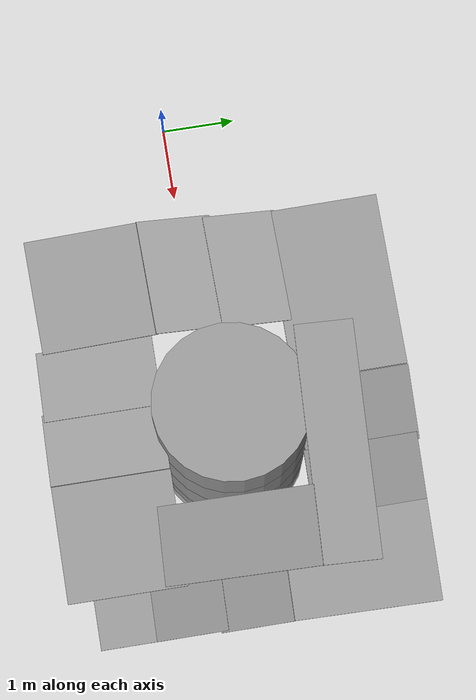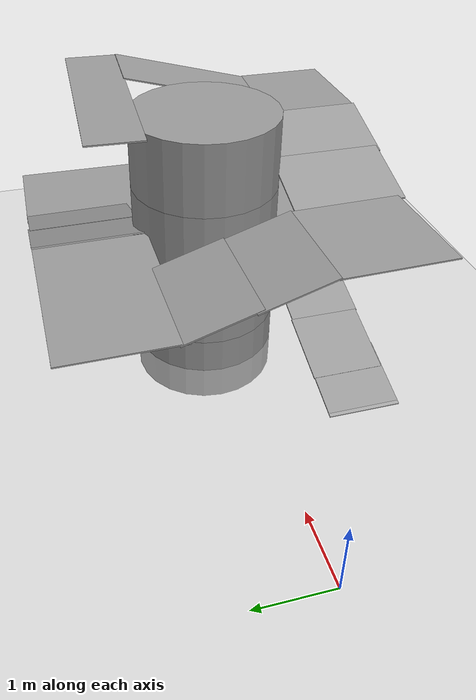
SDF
<sdf version="1.6">
 <world name="default">
  <light name="sun" type="directional">
   <pose>0 0 10 0 -0 0</pose>
   <diffuse>0.8 0.8 0.8 1</diffuse>
   <specular>0.2 0.2 0.2 1</specular>
   <attenuation>
    <range>1000</range>
    <constant>0.9</constant>
    <linear>0.01</linear>
    <quadratic>0.001</quadratic>
   </attenuation>
   <direction>-0.5 0.1 -0.9</direction>
  </light>
  <model name="ground_plane">
   <static>1</static>
   <link name="link">
    <collision name="collision">
     <geometry><plane><normal>0 0 1</normal><size>100 100</size></plane></geometry>
     <surface>
      <contact><collide_bitmask>65535</collide_bitmask></contact>
      <friction><ode><mu>100</mu><mu2>50</mu2></ode></friction>
     </surface>
    </collision>
    <visual name="visual">
     <cast_shadows>0</cast_shadows>
     <geometry><plane><normal>0 0 1</normal><size>100 100</size></plane></geometry>
     <material>
      <script><uri>file://media/materials/scripts/gazebo.material</uri><name>Gazebo/Grey</name></script>
     </material>
    </visual>
   </link>
  </model>
  <gravity>0 0 -9.8</gravity>
  <magnetic_field>6e-06 2.3e-05 -4.2e-05</magnetic_field>
  <atmosphere type="adiabatic"/>
  <physics name="default_physics" default="0" type="ode">
   <max_step_size>0.001</max_step_size>
   <real_time_factor>1</real_time_factor>
   <real_time_update_rate>1000</real_time_update_rate>
  </physics>
  <scene><ambient>0.4 0.4 0.4 1</ambient><background>0.7 0.7 0.7 1</background><shadows>1</shadows></scene>
  <spherical_coordinates>
   <surface_model>EARTH_WGS84</surface_model>
   <latitude_deg>0</latitude_deg>
   <longitude_deg>0</longitude_deg>
   <elevation>0</elevation>
   <heading_deg>0</heading_deg>
  </spherical_coordinates>
  <model name="tall_cylinder">
   <link name="link">
    <inertial>
     <mass>1</mass>
     <inertia><ixx>0.145833</ixx><ixy>0</ixy><ixz>0</ixz><iyy>0.145833</iyy><iyz>0</iyz><izz>0.125</izz></inertia>
    </inertial>
    <visual name="visual">
     <geometry><cylinder><radius>1</radius><length>1</length></cylinder></geometry>
     <material>
      <script><name>Gazebo/Grey</name><uri>file://media/materials/scripts/gazebo.material</uri></script>
      <shader type="pixel"><normal_map>__default__</normal_map></shader>
      <emissive>0 0 0 1</emissive>
      <ambient>0.3 0.3 0.3 1</ambient>
      <diffuse>0.7 0.7 0.7 1</diffuse>
      <specular>0.01 0.01 0.01 1</specular>
     </material>
    </visual>
    <collision name="collision">
     <geometry><cylinder><radius>0.5</radius><length>1</length></cylinder></geometry>
     <surface>
      <friction>
       <ode><mu>1</mu><mu2>1</mu2><fdir1>0 0 0</fdir1><slip1>0</slip1><slip2>0</slip2></ode>
       <torsional>
        <coefficient>1</coefficient>
        <patch_radius>0</patch_radius>
        <surface_radius>0</surface_radius>
        <use_patch_radius>1</use_patch_radius>
        <ode><slip>0</slip></ode>
       </torsional>
      </friction>
      <bounce><restitution_coefficient>0</restitution_coefficient><threshold>1e+06</threshold></bounce>
      <contact>
       <collide_without_contact>0</collide_without_contact>
       <collide_without_contact_bitmask>1</collide_without_contact_bitmask>
       <collide_bitmask>1</collide_bitmask>
       <ode>
        <soft_cfm>0</soft_cfm>
        <soft_erp>0.2</soft_erp>
        <kp>1e+13</kp>
        <kd>1</kd>
        <max_vel>0.01</max_vel>
        <min_depth>0</min_depth>
       </ode>
       <bullet>
        <split_impulse>1</split_impulse>
        <split_impulse_penetration_threshold>-0.01</split_impulse_penetration_threshold>
        <soft_cfm>0</soft_cfm>
        <soft_erp>0.2</soft_erp>
        <kp>1e+13</kp>
        <kd>1</kd>
       </bullet>
      </contact>
     </surface>
    </collision>
   </link>
   <link name="link_0">
    <inertial>
     <mass>10</mass>
     <inertia><ixx>1.45833</ixx><ixy>0</ixy><ixz>0</ixz><iyy>1.45833</iyy><iyz>0</iyz><izz>1.25</izz></inertia>
    </inertial>
    <pose>0 0 1 -3e-06 -4e-06 -0</pose>
    <visual name="visual">
     <geometry><cylinder><radius>1</radius><length>1</length></cylinder></geometry>
     <material>
      <lighting>1</lighting>
      <script><uri>file://media/materials/scripts/gazebo.material</uri><name>Gazebo/Grey</name></script>
      <shader type="pixel"><normal_map>__default__</normal_map></shader>
      <emissive>0 0 0 1</emissive>
      <ambient>0.3 0.3 0.3 1</ambient>
      <diffuse>0.7 0.7 0.7 1</diffuse>
      <specular>0.01 0.01 0.01 1</specular>
     </material>
    </visual>
    <collision name="collision">
     <geometry><cylinder><radius>0.5</radius><length>1</length></cylinder></geometry>
     <surface>
      <friction>
       <ode><mu>1</mu><mu2>1</mu2><fdir1>0 0 0</fdir1><slip1>0</slip1><slip2>0</slip2></ode>
       <torsional>
        <coefficient>1</coefficient>
        <patch_radius>0</patch_radius>
        <surface_radius>0</surface_radius>
        <use_patch_radius>1</use_patch_radius>
        <ode><slip>0</slip></ode>
       </torsional>
      </friction>
      <bounce><restitution_coefficient>0</restitution_coefficient><threshold>1e+06</threshold></bounce>
      <contact>
       <collide_without_contact>0</collide_without_contact>
       <collide_without_contact_bitmask>1</collide_without_contact_bitmask>
       <collide_bitmask>1</collide_bitmask>
       <ode>
        <soft_cfm>0</soft_cfm>
        <soft_erp>0.2</soft_erp>
        <kp>1e+13</kp>
        <kd>1</kd>
        <max_vel>0.01</max_vel>
        <min_depth>0</min_depth>
       </ode>
       <bullet>
        <split_impulse>1</split_impulse>
        <split_impulse_penetration_threshold>-0.01</split_impulse_penetration_threshold>
        <soft_cfm>0</soft_cfm>
        <soft_erp>0.2</soft_erp>
        <kp>1e+13</kp>
        <kd>1</kd>
       </bullet>
      </contact>
     </surface>
    </collision>
   </link>
   <link name="link_1">
    <inertial>
     <mass>1</mass>
     <inertia><ixx>0.145833</ixx><ixy>0</ixy><ixz>0</ixz><iyy>0.145833</iyy><iyz>0</iyz><izz>0.125</izz></inertia>
    </inertial>
    <pose>-4e-06 3e-06 2 -3e-06 -4e-06 -0</pose>
    <visual name="visual">
     <geometry><cylinder><radius>1</radius><length>1</length></cylinder></geometry>
     <material>
      <lighting>1</lighting>
      <script><uri>file://media/materials/scripts/gazebo.material</uri><name>Gazebo/Grey</name></script>
      <shader type="pixel"><normal_map>__default__</normal_map></shader>
      <emissive>0 0 0 1</emissive>
      <ambient>0.3 0.3 0.3 1</ambient>
      <diffuse>0.7 0.7 0.7 1</diffuse>
      <specular>0.01 0.01 0.01 1</specular>
     </material>
    </visual>
    <collision name="collision">
     <geometry><cylinder><radius>0.5</radius><length>1</length></cylinder></geometry>
     <surface>
      <friction>
       <ode><mu>1</mu><mu2>1</mu2><fdir1>0 0 0</fdir1><slip1>0</slip1><slip2>0</slip2></ode>
       <torsional>
        <coefficient>1</coefficient>
        <patch_radius>0</patch_radius>
        <surface_radius>0</surface_radius>
        <use_patch_radius>1</use_patch_radius>
        <ode><slip>0</slip></ode>
       </torsional>
      </friction>
      <bounce><restitution_coefficient>0</restitution_coefficient><threshold>1e+06</threshold></bounce>
      <contact>
       <collide_without_contact>0</collide_without_contact>
       <collide_without_contact_bitmask>1</collide_without_contact_bitmask>
       <collide_bitmask>1</collide_bitmask>
       <ode>
        <soft_cfm>0</soft_cfm>
        <soft_erp>0.2</soft_erp>
        <kp>1e+13</kp>
        <kd>1</kd>
        <max_vel>0.01</max_vel>
        <min_depth>0</min_depth>
       </ode>
       <bullet>
        <split_impulse>1</split_impulse>
        <split_impulse_penetration_threshold>-0.01</split_impulse_penetration_threshold>
        <soft_cfm>0</soft_cfm>
        <soft_erp>0.2</soft_erp>
        <kp>1e+13</kp>
        <kd>1</kd>
       </bullet>
      </contact>
     </surface>
    </collision>
   </link>
   <link name="link_2">
    <inertial>
     <mass>1</mass>
     <inertia><ixx>0.145833</ixx><ixy>0</ixy><ixz>0</ixz><iyy>0.145833</iyy><iyz>0</iyz><izz>0.125</izz></inertia>
    </inertial>
    <pose>-8e-06 6e-06 3 -3e-06 -4e-06 -0</pose>
    <visual name="visual">
     <geometry><cylinder><radius>1</radius><length>1</length></cylinder></geometry>
     <material>
      <lighting>1</lighting>
      <script><uri>file://media/materials/scripts/gazebo.material</uri><name>Gazebo/Grey</name></script>
      <shader type="pixel"><normal_map>__default__</normal_map></shader>
      <emissive>0 0 0 1</emissive>
      <ambient>0.3 0.3 0.3 1</ambient>
      <diffuse>0.7 0.7 0.7 1</diffuse>
      <specular>0.01 0.01 0.01 1</specular>
     </material>
    </visual>
    <collision name="collision">
     <geometry><cylinder><radius>0.5</radius><length>1</length></cylinder></geometry>
     <surface>
      <friction>
       <ode><mu>1</mu><mu2>1</mu2><fdir1>0 0 0</fdir1><slip1>0</slip1><slip2>0</slip2></ode>
       <torsional>
        <coefficient>1</coefficient>
        <patch_radius>0</patch_radius>
        <surface_radius>0</surface_radius>
        <use_patch_radius>1</use_patch_radius>
        <ode><slip>0</slip></ode>
       </torsional>
      </friction>
      <bounce><restitution_coefficient>0</restitution_coefficient><threshold>1e+06</threshold></bounce>
      <contact>
       <collide_without_contact>0</collide_without_contact>
       <collide_without_contact_bitmask>1</collide_without_contact_bitmask>
       <collide_bitmask>1</collide_bitmask>
       <ode>
        <soft_cfm>0</soft_cfm>
        <soft_erp>0.2</soft_erp>
        <kp>1e+13</kp>
        <kd>1</kd>
        <max_vel>0.01</max_vel>
        <min_depth>0</min_depth>
       </ode>
       <bullet>
        <split_impulse>1</split_impulse>
        <split_impulse_penetration_threshold>-0.01</split_impulse_penetration_threshold>
        <soft_cfm>0</soft_cfm>
        <soft_erp>0.2</soft_erp>
        <kp>1e+13</kp>
        <kd>1</kd>
       </bullet>
      </contact>
     </surface>
    </collision>
   </link>
   <joint name="link_0_JOINT_1" type="revolute">
    <parent>link_0</parent>
    <child>link_1</child>
    <axis>
     <xyz>1 0 0</xyz>
     <use_parent_model_frame>0</use_parent_model_frame>
     <limit>
      <lower>-1.79769e+308</lower>
      <upper>1.79769e+308</upper>
      <effort>-1</effort>
      <velocity>-1</velocity>
     </limit>
     <dynamics>
      <spring_reference>0</spring_reference>
      <spring_stiffness>0</spring_stiffness>
      <damping>0</damping>
      <friction>0</friction>
     </dynamics>
    </axis>
    <physics>
     <ode><limit><cfm>0</cfm><erp>0.2</erp></limit><suspension><cfm>0</cfm><erp>0.2</erp></suspension></ode>
    </physics>
   </joint>
   <joint name="link_1_JOINT_2" type="revolute">
    <parent>link_1</parent>
    <child>link_2</child>
    <axis>
     <xyz>1 0 0</xyz>
     <use_parent_model_frame>0</use_parent_model_frame>
     <limit>
      <lower>-1.79769e+308</lower>
      <upper>1.79769e+308</upper>
      <effort>-1</effort>
      <velocity>-1</velocity>
     </limit>
     <dynamics>
      <spring_reference>0</spring_reference>
      <spring_stiffness>0</spring_stiffness>
      <damping>0</damping>
      <friction>0</friction>
     </dynamics>
    </axis>
    <physics>
     <ode><limit><cfm>0</cfm><erp>0.2</erp></limit><suspension><cfm>0</cfm><erp>0.2</erp></suspension></ode>
    </physics>
   </joint>
   <joint name="link_JOINT_0" type="revolute">
    <parent>link</parent>
    <child>link_0</child>
    <axis>
     <xyz>1 0 0</xyz>
     <use_parent_model_frame>0</use_parent_model_frame>
     <limit>
      <lower>-1.79769e+308</lower>
      <upper>1.79769e+308</upper>
      <effort>-1</effort>
      <velocity>-1</velocity>
     </limit>
     <dynamics>
      <spring_reference>0</spring_reference>
      <spring_stiffness>0</spring_stiffness>
      <damping>0</damping>
      <friction>0</friction>
     </dynamics>
    </axis>
    <physics>
     <ode><limit><cfm>0</cfm><erp>0.2</erp></limit><suspension><cfm>0</cfm><erp>0.2</erp></suspension></ode>
    </physics>
   </joint>
   <static>1</static>
   <pose>4.61215 0.24743 0 0 -0 0</pose>
  </model>
  <model name="ramp">
   <link name="link">
    <inertial>
     <mass>1</mass>
     <inertia>
      <ixx>0.166667</ixx>
      <ixy>0</ixy>
      <ixz>0</ixz>
      <iyy>0.166667</iyy>
      <iyz>0</iyz>
      <izz>0.166667</izz>
     </inertia>
    </inertial>
    <visual name="visual">
     <geometry><box><size>1 1 0.02</size></box></geometry>
     <material>
      <script><name>Gazebo/Grey</name><uri>file://media/materials/scripts/gazebo.material</uri></script>
      <shader type="pixel"><normal_map>__default__</normal_map></shader>
      <ambient>0.3 0.3 0.3 1</ambient>
      <diffuse>0.7 0.7 0.7 1</diffuse>
      <specular>0.01 0.01 0.01 1</specular>
      <emissive>0 0 0 1</emissive>
     </material>
     <pose>0 0 0.61 0 -0.3 0</pose>
    </visual>
    <collision name="collision">
     <geometry><box><size>1 1 1</size></box></geometry>
     <surface>
      <friction>
       <ode><mu>1</mu><mu2>1</mu2><fdir1>0 0 0</fdir1><slip1>0</slip1><slip2>0</slip2></ode>
       <torsional>
        <coefficient>1</coefficient>
        <patch_radius>0</patch_radius>
        <surface_radius>0</surface_radius>
        <use_patch_radius>1</use_patch_radius>
        <ode><slip>0</slip></ode>
       </torsional>
      </friction>
      <bounce><restitution_coefficient>0</restitution_coefficient><threshold>1e+06</threshold></bounce>
      <contact>
       <collide_without_contact>0</collide_without_contact>
       <collide_without_contact_bitmask>1</collide_without_contact_bitmask>
       <collide_bitmask>1</collide_bitmask>
       <ode>
        <soft_cfm>0</soft_cfm>
        <soft_erp>0.2</soft_erp>
        <kp>1e+13</kp>
        <kd>1</kd>
        <max_vel>0.01</max_vel>
        <min_depth>0</min_depth>
       </ode>
       <bullet>
        <split_impulse>1</split_impulse>
        <split_impulse_penetration_threshold>-0.01</split_impulse_penetration_threshold>
        <soft_cfm>0</soft_cfm>
        <soft_erp>0.2</soft_erp>
        <kp>1e+13</kp>
        <kd>1</kd>
       </bullet>
      </contact>
     </surface>
    </collision>
   </link>
   <link name="link_clone">
    <inertial>
     <mass>1</mass>
     <inertia>
      <ixx>0.166667</ixx>
      <ixy>0</ixy>
      <ixz>0</ixz>
      <iyy>0.166667</iyy>
      <iyz>0</iyz>
      <izz>0.166667</izz>
     </inertia>
    </inertial>
    <pose>0.85978 -0.021746 0 0 -0 0</pose>
    <visual name="visual">
     <geometry><box><size>1 1 0.02</size></box></geometry>
     <material>
      <script><name>Gazebo/Grey</name><uri>file://media/materials/scripts/gazebo.material</uri></script>
      <shader type="pixel"><normal_map>__default__</normal_map></shader>
      <ambient>0.3 0.3 0.3 1</ambient>
      <diffuse>0.7 0.7 0.7 1</diffuse>
      <specular>0.01 0.01 0.01 1</specular>
      <emissive>0 0 0 1</emissive>
     </material>
     <pose>0 0 0.87 0 -0.3 0</pose>
    </visual>
    <collision name="collision">
     <geometry><box><size>1 1 1</size></box></geometry>
     <surface>
      <friction>
       <ode><mu>1</mu><mu2>1</mu2><fdir1>0 0 0</fdir1><slip1>0</slip1><slip2>0</slip2></ode>
       <torsional>
        <coefficient>1</coefficient>
        <patch_radius>0</patch_radius>
        <surface_radius>0</surface_radius>
        <use_patch_radius>1</use_patch_radius>
        <ode><slip>0</slip></ode>
       </torsional>
      </friction>
      <bounce><restitution_coefficient>0</restitution_coefficient><threshold>1e+06</threshold></bounce>
      <contact>
       <collide_without_contact>0</collide_without_contact>
       <collide_without_contact_bitmask>1</collide_without_contact_bitmask>
       <collide_bitmask>1</collide_bitmask>
       <ode>
        <soft_cfm>0</soft_cfm>
        <soft_erp>0.2</soft_erp>
        <kp>1e+13</kp>
        <kd>1</kd>
        <max_vel>0.01</max_vel>
        <min_depth>0</min_depth>
       </ode>
       <bullet>
        <split_impulse>1</split_impulse>
        <split_impulse_penetration_threshold>-0.01</split_impulse_penetration_threshold>
        <soft_cfm>0</soft_cfm>
        <soft_erp>0.2</soft_erp>
        <kp>1e+13</kp>
        <kd>1</kd>
       </bullet>
      </contact>
     </surface>
    </collision>
   </link>
   <link name="link_clone_0">
    <inertial>
     <mass>1</mass>
     <inertia>
      <ixx>0.166667</ixx>
      <ixy>0</ixy>
      <ixz>0</ixz>
      <iyy>0.166667</iyy>
      <iyz>0</iyz>
      <izz>0.166667</izz>
     </inertia>
    </inertial>
    <pose>-0.943514 0.016943 0 0 -0 0</pose>
    <visual name="visual">
     <geometry><box><size>1 1 0.02</size></box></geometry>
     <material>
      <script><name>Gazebo/Grey</name><uri>file://media/materials/scripts/gazebo.material</uri></script>
      <shader type="pixel"><normal_map>__default__</normal_map></shader>
      <ambient>0.3 0.3 0.3 1</ambient>
      <diffuse>0.7 0.7 0.7 1</diffuse>
      <specular>0.01 0.01 0.01 1</specular>
      <emissive>0 0 0 1</emissive>
     </material>
     <pose>0 0 0.33 0 -0.3 0</pose>
    </visual>
    <collision name="collision">
     <geometry><box><size>1 1 1</size></box></geometry>
     <surface>
      <friction>
       <ode><mu>1</mu><mu2>1</mu2><fdir1>0 0 0</fdir1><slip1>0</slip1><slip2>0</slip2></ode>
       <torsional>
        <coefficient>1</coefficient>
        <patch_radius>0</patch_radius>
        <surface_radius>0</surface_radius>
        <use_patch_radius>1</use_patch_radius>
        <ode><slip>0</slip></ode>
       </torsional>
      </friction>
      <bounce><restitution_coefficient>0</restitution_coefficient><threshold>1e+06</threshold></bounce>
      <contact>
       <collide_without_contact>0</collide_without_contact>
       <collide_without_contact_bitmask>1</collide_without_contact_bitmask>
       <collide_bitmask>1</collide_bitmask>
       <ode>
        <soft_cfm>0</soft_cfm>
        <soft_erp>0.2</soft_erp>
        <kp>1e+13</kp>
        <kd>1</kd>
        <max_vel>0.01</max_vel>
        <min_depth>0</min_depth>
       </ode>
       <bullet>
        <split_impulse>1</split_impulse>
        <split_impulse_penetration_threshold>-0.01</split_impulse_penetration_threshold>
        <soft_cfm>0</soft_cfm>
        <soft_erp>0.2</soft_erp>
        <kp>1e+13</kp>
        <kd>1</kd>
       </bullet>
      </contact>
     </surface>
    </collision>
   </link>
   <link name="link_clone_1">
    <inertial>
     <mass>1</mass>
     <inertia>
      <ixx>0.166667</ixx>
      <ixy>0</ixy>
      <ixz>0</ixz>
      <iyy>0.166667</iyy>
      <iyz>0</iyz>
      <izz>0.166667</izz>
     </inertia>
     <pose>0 0 -0.14 0 -0 0</pose>
    </inertial>
    <pose>-1.52036 0.007573 0 0 -0 0</pose>
    <visual name="visual">
     <geometry><box><size>1 1 0.02</size></box></geometry>
     <material>
      <script><name>Gazebo/Grey</name><uri>file://media/materials/scripts/gazebo.material</uri></script>
      <shader type="pixel"><normal_map>__default__</normal_map></shader>
      <ambient>0.3 0.3 0.3 1</ambient>
      <diffuse>0.7 0.7 0.7 1</diffuse>
      <specular>0.01 0.01 0.01 1</specular>
      <emissive>0 0 0 1</emissive>
     </material>
     <pose>0 0 0.15 0 -0.3 0</pose>
    </visual>
    <collision name="collision">
     <geometry><box><size>1 1 1</size></box></geometry>
     <surface>
      <friction>
       <ode><mu>1</mu><mu2>1</mu2><fdir1>0 0 0</fdir1><slip1>0</slip1><slip2>0</slip2></ode>
       <torsional>
        <coefficient>1</coefficient>
        <patch_radius>0</patch_radius>
        <surface_radius>0</surface_radius>
        <use_patch_radius>1</use_patch_radius>
        <ode><slip>0</slip></ode>
       </torsional>
      </friction>
      <bounce><restitution_coefficient>0</restitution_coefficient><threshold>1e+06</threshold></bounce>
      <contact>
       <collide_without_contact>0</collide_without_contact>
       <collide_without_contact_bitmask>1</collide_without_contact_bitmask>
       <collide_bitmask>1</collide_bitmask>
       <ode>
        <soft_cfm>0</soft_cfm>
        <soft_erp>0.2</soft_erp>
        <kp>1e+13</kp>
        <kd>1</kd>
        <max_vel>0.01</max_vel>
        <min_depth>0</min_depth>
       </ode>
       <bullet>
        <split_impulse>1</split_impulse>
        <split_impulse_penetration_threshold>-0.01</split_impulse_penetration_threshold>
        <soft_cfm>0</soft_cfm>
        <soft_erp>0.2</soft_erp>
        <kp>1e+13</kp>
        <kd>1</kd>
       </bullet>
      </contact>
     </surface>
    </collision>
   </link>
   <link name="link_clone_clone">
    <inertial>
     <mass>1</mass>
     <inertia>
      <ixx>0.166667</ixx>
      <ixy>0</ixy>
      <ixz>0</ixz>
      <iyy>0.166667</iyy>
      <iyz>0</iyz>
      <izz>0.166667</izz>
     </inertia>
    </inertial>
    <pose>1.79021 -0.017853 0 0 -0 0</pose>
    <visual name="visual">
     <geometry><box><size>1.5 1 0.02</size></box></geometry>
     <material>
      <script><name>Gazebo/Grey</name><uri>file://media/materials/scripts/gazebo.material</uri></script>
      <shader type="pixel"><normal_map>__default__</normal_map></shader>
      <ambient>0.3 0.3 0.3 1</ambient>
      <diffuse>0.7 0.7 0.7 1</diffuse>
      <specular>0.01 0.01 0.01 1</specular>
      <emissive>0 0 0 1</emissive>
     </material>
     <pose>0.3 0 1.02 0 -0 0</pose>
    </visual>
    <collision name="collision">
     <geometry><box><size>1 1 1</size></box></geometry>
     <surface>
      <friction>
       <ode><mu>1</mu><mu2>1</mu2><fdir1>0 0 0</fdir1><slip1>0</slip1><slip2>0</slip2></ode>
       <torsional>
        <coefficient>1</coefficient>
        <patch_radius>0</patch_radius>
        <surface_radius>0</surface_radius>
        <use_patch_radius>1</use_patch_radius>
        <ode><slip>0</slip></ode>
       </torsional>
      </friction>
      <bounce><restitution_coefficient>0</restitution_coefficient><threshold>1e+06</threshold></bounce>
      <contact>
       <collide_without_contact>0</collide_without_contact>
       <collide_without_contact_bitmask>1</collide_without_contact_bitmask>
       <collide_bitmask>1</collide_bitmask>
       <ode>
        <soft_cfm>0</soft_cfm>
        <soft_erp>0.2</soft_erp>
        <kp>1e+13</kp>
        <kd>1</kd>
        <max_vel>0.01</max_vel>
        <min_depth>0</min_depth>
       </ode>
       <bullet>
        <split_impulse>1</split_impulse>
        <split_impulse_penetration_threshold>-0.01</split_impulse_penetration_threshold>
        <soft_cfm>0</soft_cfm>
        <soft_erp>0.2</soft_erp>
        <kp>1e+13</kp>
        <kd>1</kd>
       </bullet>
      </contact>
     </surface>
    </collision>
   </link>
   <static>1</static>
   <pose>4.35501 -1.39087 -0.035583 0 -0 0</pose>
  </model>
  <model name="ramp_clone_clone_clone">
   <link name="link">
    <inertial>
     <mass>1</mass>
     <inertia>
      <ixx>0.166667</ixx>
      <ixy>0</ixy>
      <ixz>0</ixz>
      <iyy>0.166667</iyy>
      <iyz>0</iyz>
      <izz>0.166667</izz>
     </inertia>
    </inertial>
    <visual name="visual">
     <geometry><box><size>1 1.5 0.02</size></box></geometry>
     <material>
      <script><name>Gazebo/Grey</name><uri>file://media/materials/scripts/gazebo.material</uri></script>
      <shader type="pixel"><normal_map>__default__</normal_map></shader>
      <ambient>0.3 0.3 0.3 1</ambient>
      <diffuse>0.7 0.7 0.7 1</diffuse>
      <specular>0.01 0.01 0.01 1</specular>
      <emissive>0 0 0 1</emissive>
     </material>
     <pose>0 0 0.61 0 -0.3 0</pose>
    </visual>
    <collision name="collision">
     <geometry><box><size>1 1 1</size></box></geometry>
     <surface>
      <friction>
       <ode><mu>1</mu><mu2>1</mu2><fdir1>0 0 0</fdir1><slip1>0</slip1><slip2>0</slip2></ode>
       <torsional>
        <coefficient>1</coefficient>
        <patch_radius>0</patch_radius>
        <surface_radius>0</surface_radius>
        <use_patch_radius>1</use_patch_radius>
        <ode><slip>0</slip></ode>
       </torsional>
      </friction>
      <bounce><restitution_coefficient>0</restitution_coefficient><threshold>1e+06</threshold></bounce>
      <contact>
       <collide_without_contact>0</collide_without_contact>
       <collide_without_contact_bitmask>1</collide_without_contact_bitmask>
       <collide_bitmask>1</collide_bitmask>
       <ode>
        <soft_cfm>0</soft_cfm>
        <soft_erp>0.2</soft_erp>
        <kp>1e+13</kp>
        <kd>1</kd>
        <max_vel>0.01</max_vel>
        <min_depth>0</min_depth>
       </ode>
       <bullet>
        <split_impulse>1</split_impulse>
        <split_impulse_penetration_threshold>-0.01</split_impulse_penetration_threshold>
        <soft_cfm>0</soft_cfm>
        <soft_erp>0.2</soft_erp>
        <kp>1e+13</kp>
        <kd>1</kd>
       </bullet>
      </contact>
     </surface>
    </collision>
   </link>
   <link name="link_clone">
    <inertial>
     <mass>1</mass>
     <inertia>
      <ixx>0.166667</ixx>
      <ixy>0</ixy>
      <ixz>0</ixz>
      <iyy>0.166667</iyy>
      <iyz>0</iyz>
      <izz>0.166667</izz>
     </inertia>
    </inertial>
    <pose>0.85978 -0.021746 0 0 -0 0</pose>
    <visual name="visual">
     <geometry><box><size>1 1.5 0.02</size></box></geometry>
     <material>
      <script><name>Gazebo/Grey</name><uri>file://media/materials/scripts/gazebo.material</uri></script>
      <shader type="pixel"><normal_map>__default__</normal_map></shader>
      <ambient>0.3 0.3 0.3 1</ambient>
      <diffuse>0.7 0.7 0.7 1</diffuse>
      <specular>0.01 0.01 0.01 1</specular>
      <emissive>0 0 0 1</emissive>
     </material>
     <pose>0 0 0.87 0 -0.3 0</pose>
    </visual>
    <collision name="collision">
     <geometry><box><size>1 1 1</size></box></geometry>
     <surface>
      <friction>
       <ode><mu>1</mu><mu2>1</mu2><fdir1>0 0 0</fdir1><slip1>0</slip1><slip2>0</slip2></ode>
       <torsional>
        <coefficient>1</coefficient>
        <patch_radius>0</patch_radius>
        <surface_radius>0</surface_radius>
        <use_patch_radius>1</use_patch_radius>
        <ode><slip>0</slip></ode>
       </torsional>
      </friction>
      <bounce><restitution_coefficient>0</restitution_coefficient><threshold>1e+06</threshold></bounce>
      <contact>
       <collide_without_contact>0</collide_without_contact>
       <collide_without_contact_bitmask>1</collide_without_contact_bitmask>
       <collide_bitmask>1</collide_bitmask>
       <ode>
        <soft_cfm>0</soft_cfm>
        <soft_erp>0.2</soft_erp>
        <kp>1e+13</kp>
        <kd>1</kd>
        <max_vel>0.01</max_vel>
        <min_depth>0</min_depth>
       </ode>
       <bullet>
        <split_impulse>1</split_impulse>
        <split_impulse_penetration_threshold>-0.01</split_impulse_penetration_threshold>
        <soft_cfm>0</soft_cfm>
        <soft_erp>0.2</soft_erp>
        <kp>1e+13</kp>
        <kd>1</kd>
       </bullet>
      </contact>
     </surface>
    </collision>
   </link>
   <link name="link_clone_clone">
    <inertial>
     <mass>1</mass>
     <inertia>
      <ixx>0.166667</ixx>
      <ixy>0</ixy>
      <ixz>0</ixz>
      <iyy>0.166667</iyy>
      <iyz>0</iyz>
      <izz>0.166667</izz>
     </inertia>
    </inertial>
    <pose>1.79021 -0.017853 0 0 -0 0</pose>
    <visual name="visual">
     <geometry><box><size>1.5 1.5 0.02</size></box></geometry>
     <material>
      <script><name>Gazebo/Grey</name><uri>file://media/materials/scripts/gazebo.material</uri></script>
      <shader type="pixel"><normal_map>__default__</normal_map></shader>
      <ambient>0.3 0.3 0.3 1</ambient>
      <diffuse>0.7 0.7 0.7 1</diffuse>
      <specular>0.01 0.01 0.01 1</specular>
      <emissive>0 0 0 1</emissive>
     </material>
     <pose>0.27 0 1 0 -0 0</pose>
    </visual>
    <collision name="collision">
     <geometry><box><size>1 1 1</size></box></geometry>
     <surface>
      <friction>
       <ode><mu>1</mu><mu2>1</mu2><fdir1>0 0 0</fdir1><slip1>0</slip1><slip2>0</slip2></ode>
       <torsional>
        <coefficient>1</coefficient>
        <patch_radius>0</patch_radius>
        <surface_radius>0</surface_radius>
        <use_patch_radius>1</use_patch_radius>
        <ode><slip>0</slip></ode>
       </torsional>
      </friction>
      <bounce><restitution_coefficient>0</restitution_coefficient><threshold>1e+06</threshold></bounce>
      <contact>
       <collide_without_contact>0</collide_without_contact>
       <collide_without_contact_bitmask>1</collide_without_contact_bitmask>
       <collide_bitmask>1</collide_bitmask>
       <ode>
        <soft_cfm>0</soft_cfm>
        <soft_erp>0.2</soft_erp>
        <kp>1e+13</kp>
        <kd>1</kd>
        <max_vel>0.01</max_vel>
        <min_depth>0</min_depth>
       </ode>
       <bullet>
        <split_impulse>1</split_impulse>
        <split_impulse_penetration_threshold>-0.01</split_impulse_penetration_threshold>
        <soft_cfm>0</soft_cfm>
        <soft_erp>0.2</soft_erp>
        <kp>1e+13</kp>
        <kd>1</kd>
       </bullet>
      </contact>
     </surface>
    </collision>
   </link>
   <static>1</static>
   <pose>2.67329 0.777209 1.55917 0 0 -1.54743</pose>
  </model>
  <model name="ramp_clone_clone_clone_clone">
   <link name="link">
    <inertial>
     <mass>1</mass>
     <inertia>
      <ixx>0.166667</ixx>
      <ixy>0</ixy>
      <ixz>0</ixz>
      <iyy>0.166667</iyy>
      <iyz>0</iyz>
      <izz>0.166667</izz>
     </inertia>
    </inertial>
    <visual name="visual">
     <geometry><box><size>1 1.5 0.02</size></box></geometry>
     <material>
      <script><name>Gazebo/Grey</name><uri>file://media/materials/scripts/gazebo.material</uri></script>
      <shader type="pixel"><normal_map>__default__</normal_map></shader>
      <ambient>0.3 0.3 0.3 1</ambient>
      <diffuse>0.7 0.7 0.7 1</diffuse>
      <specular>0.01 0.01 0.01 1</specular>
      <emissive>0 0 0 1</emissive>
     </material>
     <pose>0 0 0.61 0 -0.3 0</pose>
    </visual>
    <collision name="collision">
     <geometry><box><size>1 1 1</size></box></geometry>
     <surface>
      <friction>
       <ode><mu>1</mu><mu2>1</mu2><fdir1>0 0 0</fdir1><slip1>0</slip1><slip2>0</slip2></ode>
       <torsional>
        <coefficient>1</coefficient>
        <patch_radius>0</patch_radius>
        <surface_radius>0</surface_radius>
        <use_patch_radius>1</use_patch_radius>
        <ode><slip>0</slip></ode>
       </torsional>
      </friction>
      <bounce><restitution_coefficient>0</restitution_coefficient><threshold>1e+06</threshold></bounce>
      <contact>
       <collide_without_contact>0</collide_without_contact>
       <collide_without_contact_bitmask>1</collide_without_contact_bitmask>
       <collide_bitmask>1</collide_bitmask>
       <ode>
        <soft_cfm>0</soft_cfm>
        <soft_erp>0.2</soft_erp>
        <kp>1e+13</kp>
        <kd>1</kd>
        <max_vel>0.01</max_vel>
        <min_depth>0</min_depth>
       </ode>
       <bullet>
        <split_impulse>1</split_impulse>
        <split_impulse_penetration_threshold>-0.01</split_impulse_penetration_threshold>
        <soft_cfm>0</soft_cfm>
        <soft_erp>0.2</soft_erp>
        <kp>1e+13</kp>
        <kd>1</kd>
       </bullet>
      </contact>
     </surface>
    </collision>
   </link>
   <link name="link_clone">
    <inertial>
     <mass>1</mass>
     <inertia>
      <ixx>0.166667</ixx>
      <ixy>0</ixy>
      <ixz>0</ixz>
      <iyy>0.166667</iyy>
      <iyz>0</iyz>
      <izz>0.166667</izz>
     </inertia>
    </inertial>
    <pose>0.85978 -0.021746 0 0 -0 0</pose>
    <visual name="visual">
     <geometry><box><size>1 1.5 0.02</size></box></geometry>
     <material>
      <script><name>Gazebo/Grey</name><uri>file://media/materials/scripts/gazebo.material</uri></script>
      <shader type="pixel"><normal_map>__default__</normal_map></shader>
      <ambient>0.3 0.3 0.3 1</ambient>
      <diffuse>0.7 0.7 0.7 1</diffuse>
      <specular>0.01 0.01 0.01 1</specular>
      <emissive>0 0 0 1</emissive>
     </material>
     <pose>0 0 0.87 0 -0.3 0</pose>
    </visual>
    <collision name="collision">
     <geometry><box><size>1 1 1</size></box></geometry>
     <surface>
      <friction>
       <ode><mu>1</mu><mu2>1</mu2><fdir1>0 0 0</fdir1><slip1>0</slip1><slip2>0</slip2></ode>
       <torsional>
        <coefficient>1</coefficient>
        <patch_radius>0</patch_radius>
        <surface_radius>0</surface_radius>
        <use_patch_radius>1</use_patch_radius>
        <ode><slip>0</slip></ode>
       </torsional>
      </friction>
      <bounce><restitution_coefficient>0</restitution_coefficient><threshold>1e+06</threshold></bounce>
      <contact>
       <collide_without_contact>0</collide_without_contact>
       <collide_without_contact_bitmask>1</collide_without_contact_bitmask>
       <collide_bitmask>1</collide_bitmask>
       <ode>
        <soft_cfm>0</soft_cfm>
        <soft_erp>0.2</soft_erp>
        <kp>1e+13</kp>
        <kd>1</kd>
        <max_vel>0.01</max_vel>
        <min_depth>0</min_depth>
       </ode>
       <bullet>
        <split_impulse>1</split_impulse>
        <split_impulse_penetration_threshold>-0.01</split_impulse_penetration_threshold>
        <soft_cfm>0</soft_cfm>
        <soft_erp>0.2</soft_erp>
        <kp>1e+13</kp>
        <kd>1</kd>
       </bullet>
      </contact>
     </surface>
    </collision>
   </link>
   <link name="link_clone_clone">
    <inertial>
     <mass>1</mass>
     <inertia>
      <ixx>0.166667</ixx>
      <ixy>0</ixy>
      <ixz>0</ixz>
      <iyy>0.166667</iyy>
      <iyz>0</iyz>
      <izz>0.166667</izz>
     </inertia>
    </inertial>
    <pose>1.79021 -0.017853 0 0 -0 0</pose>
    <visual name="visual">
     <geometry><box><size>1.5 1.5 0.02</size></box></geometry>
     <material>
      <script><name>Gazebo/Grey</name><uri>file://media/materials/scripts/gazebo.material</uri></script>
      <shader type="pixel"><normal_map>__default__</normal_map></shader>
      <ambient>0.3 0.3 0.3 1</ambient>
      <diffuse>0.7 0.7 0.7 1</diffuse>
      <specular>0.01 0.01 0.01 1</specular>
      <emissive>0 0 0 1</emissive>
     </material>
     <pose>0.27 0 1 0 -0 0</pose>
    </visual>
    <collision name="collision">
     <geometry><box><size>1 1 1</size></box></geometry>
     <surface>
      <friction>
       <ode><mu>1</mu><mu2>1</mu2><fdir1>0 0 0</fdir1><slip1>0</slip1><slip2>0</slip2></ode>
       <torsional>
        <coefficient>1</coefficient>
        <patch_radius>0</patch_radius>
        <surface_radius>0</surface_radius>
        <use_patch_radius>1</use_patch_radius>
        <ode><slip>0</slip></ode>
       </torsional>
      </friction>
      <bounce><restitution_coefficient>0</restitution_coefficient><threshold>1e+06</threshold></bounce>
      <contact>
       <collide_without_contact>0</collide_without_contact>
       <collide_without_contact_bitmask>1</collide_without_contact_bitmask>
       <collide_bitmask>1</collide_bitmask>
       <ode>
        <soft_cfm>0</soft_cfm>
        <soft_erp>0.2</soft_erp>
        <kp>1e+13</kp>
        <kd>1</kd>
        <max_vel>0.01</max_vel>
        <min_depth>0</min_depth>
       </ode>
       <bullet>
        <split_impulse>1</split_impulse>
        <split_impulse_penetration_threshold>-0.01</split_impulse_penetration_threshold>
        <soft_cfm>0</soft_cfm>
        <soft_erp>0.2</soft_erp>
        <kp>1e+13</kp>
        <kd>1</kd>
       </bullet>
      </contact>
     </surface>
    </collision>
   </link>
   <static>1</static>
   <pose>3.91736 -1.35634 2.07123 0 0 -0.00162</pose>
  </model>
  <model name="ramp_clone">
   <link name="link">
    <inertial>
     <mass>1</mass>
     <inertia>
      <ixx>0.166667</ixx>
      <ixy>0</ixy>
      <ixz>0</ixz>
      <iyy>0.166667</iyy>
      <iyz>0</iyz>
      <izz>0.166667</izz>
     </inertia>
    </inertial>
    <visual name="visual">
     <geometry><box><size>1 1.5 0.02</size></box></geometry>
     <material>
      <script><name>Gazebo/Grey</name><uri>file://media/materials/scripts/gazebo.material</uri></script>
      <shader type="pixel"><normal_map>__default__</normal_map></shader>
      <ambient>0.3 0.3 0.3 1</ambient>
      <diffuse>0.7 0.7 0.7 1</diffuse>
      <specular>0.01 0.01 0.01 1</specular>
      <emissive>0 0 0 1</emissive>
     </material>
     <pose>0 0 0.61 0 -0.3 0</pose>
    </visual>
    <collision name="collision">
     <geometry><box><size>1 1 1</size></box></geometry>
     <surface>
      <friction>
       <ode><mu>1</mu><mu2>1</mu2><fdir1>0 0 0</fdir1><slip1>0</slip1><slip2>0</slip2></ode>
       <torsional>
        <coefficient>1</coefficient>
        <patch_radius>0</patch_radius>
        <surface_radius>0</surface_radius>
        <use_patch_radius>1</use_patch_radius>
        <ode><slip>0</slip></ode>
       </torsional>
      </friction>
      <bounce><restitution_coefficient>0</restitution_coefficient><threshold>1e+06</threshold></bounce>
      <contact>
       <collide_without_contact>0</collide_without_contact>
       <collide_without_contact_bitmask>1</collide_without_contact_bitmask>
       <collide_bitmask>1</collide_bitmask>
       <ode>
        <soft_cfm>0</soft_cfm>
        <soft_erp>0.2</soft_erp>
        <kp>1e+13</kp>
        <kd>1</kd>
        <max_vel>0.01</max_vel>
        <min_depth>0</min_depth>
       </ode>
       <bullet>
        <split_impulse>1</split_impulse>
        <split_impulse_penetration_threshold>-0.01</split_impulse_penetration_threshold>
        <soft_cfm>0</soft_cfm>
        <soft_erp>0.2</soft_erp>
        <kp>1e+13</kp>
        <kd>1</kd>
       </bullet>
      </contact>
     </surface>
    </collision>
   </link>
   <link name="link_clone">
    <inertial>
     <mass>1</mass>
     <inertia>
      <ixx>0.166667</ixx>
      <ixy>0</ixy>
      <ixz>0</ixz>
      <iyy>0.166667</iyy>
      <iyz>0</iyz>
      <izz>0.166667</izz>
     </inertia>
    </inertial>
    <pose>0.85978 -0.021746 0 0 -0 0</pose>
    <visual name="visual">
     <geometry><box><size>1 1.5 0.02</size></box></geometry>
     <material>
      <script><name>Gazebo/Grey</name><uri>file://media/materials/scripts/gazebo.material</uri></script>
      <shader type="pixel"><normal_map>__default__</normal_map></shader>
      <ambient>0.3 0.3 0.3 1</ambient>
      <diffuse>0.7 0.7 0.7 1</diffuse>
      <specular>0.01 0.01 0.01 1</specular>
      <emissive>0 0 0 1</emissive>
     </material>
     <pose>0 0 0.87 0 -0.3 0</pose>
    </visual>
    <collision name="collision">
     <geometry><box><size>1 1 1</size></box></geometry>
     <surface>
      <friction>
       <ode><mu>1</mu><mu2>1</mu2><fdir1>0 0 0</fdir1><slip1>0</slip1><slip2>0</slip2></ode>
       <torsional>
        <coefficient>1</coefficient>
        <patch_radius>0</patch_radius>
        <surface_radius>0</surface_radius>
        <use_patch_radius>1</use_patch_radius>
        <ode><slip>0</slip></ode>
       </torsional>
      </friction>
      <bounce><restitution_coefficient>0</restitution_coefficient><threshold>1e+06</threshold></bounce>
      <contact>
       <collide_without_contact>0</collide_without_contact>
       <collide_without_contact_bitmask>1</collide_without_contact_bitmask>
       <collide_bitmask>1</collide_bitmask>
       <ode>
        <soft_cfm>0</soft_cfm>
        <soft_erp>0.2</soft_erp>
        <kp>1e+13</kp>
        <kd>1</kd>
        <max_vel>0.01</max_vel>
        <min_depth>0</min_depth>
       </ode>
       <bullet>
        <split_impulse>1</split_impulse>
        <split_impulse_penetration_threshold>-0.01</split_impulse_penetration_threshold>
        <soft_cfm>0</soft_cfm>
        <soft_erp>0.2</soft_erp>
        <kp>1e+13</kp>
        <kd>1</kd>
       </bullet>
      </contact>
     </surface>
    </collision>
   </link>
   <link name="link_clone_clone">
    <inertial>
     <mass>1</mass>
     <inertia>
      <ixx>0.166667</ixx>
      <ixy>0</ixy>
      <ixz>0</ixz>
      <iyy>0.166667</iyy>
      <iyz>0</iyz>
      <izz>0.166667</izz>
     </inertia>
    </inertial>
    <pose>1.79021 -0.017853 0 0 -0 0</pose>
    <visual name="visual">
     <geometry><box><size>2 1.5 0.02</size></box></geometry>
     <material>
      <script><name>Gazebo/Grey</name><uri>file://media/materials/scripts/gazebo.material</uri></script>
      <shader type="pixel"><normal_map>__default__</normal_map></shader>
      <ambient>0.3 0.3 0.3 1</ambient>
      <diffuse>0.7 0.7 0.7 1</diffuse>
      <specular>0.01 0.01 0.01 1</specular>
      <emissive>0 0 0 1</emissive>
     </material>
     <pose>0.49 0 1 0 -0 0</pose>
    </visual>
    <collision name="collision">
     <geometry><box><size>1 1 1</size></box></geometry>
     <surface>
      <friction>
       <ode><mu>1</mu><mu2>1</mu2><fdir1>0 0 0</fdir1><slip1>0</slip1><slip2>0</slip2></ode>
       <torsional>
        <coefficient>1</coefficient>
        <patch_radius>0</patch_radius>
        <surface_radius>0</surface_radius>
        <use_patch_radius>1</use_patch_radius>
        <ode><slip>0</slip></ode>
       </torsional>
      </friction>
      <bounce><restitution_coefficient>0</restitution_coefficient><threshold>1e+06</threshold></bounce>
      <contact>
       <collide_without_contact>0</collide_without_contact>
       <collide_without_contact_bitmask>1</collide_without_contact_bitmask>
       <collide_bitmask>1</collide_bitmask>
       <ode>
        <soft_cfm>0</soft_cfm>
        <soft_erp>0.2</soft_erp>
        <kp>1e+13</kp>
        <kd>1</kd>
        <max_vel>0.01</max_vel>
        <min_depth>0</min_depth>
       </ode>
       <bullet>
        <split_impulse>1</split_impulse>
        <split_impulse_penetration_threshold>-0.01</split_impulse_penetration_threshold>
        <soft_cfm>0</soft_cfm>
        <soft_erp>0.2</soft_erp>
        <kp>1e+13</kp>
        <kd>1</kd>
       </bullet>
      </contact>
     </surface>
    </collision>
   </link>
   <static>1</static>
   <pose>6.45668 -0.669582 0.526227 0 -0 1.55103</pose>
  </model>
  <model name="ramp_clone_clone">
   <link name="link">
    <inertial>
     <mass>1</mass>
     <inertia>
      <ixx>0.166667</ixx>
      <ixy>0</ixy>
      <ixz>0</ixz>
      <iyy>0.166667</iyy>
      <iyz>0</iyz>
      <izz>0.166667</izz>
     </inertia>
    </inertial>
    <visual name="visual">
     <geometry><box><size>1 1.5 0.02</size></box></geometry>
     <material>
      <script><name>Gazebo/Grey</name><uri>file://media/materials/scripts/gazebo.material</uri></script>
      <shader type="pixel"><normal_map>__default__</normal_map></shader>
      <ambient>0.3 0.3 0.3 1</ambient>
      <diffuse>0.7 0.7 0.7 1</diffuse>
      <specular>0.01 0.01 0.01 1</specular>
      <emissive>0 0 0 1</emissive>
     </material>
     <pose>0 0 0.61 0 -0.3 0</pose>
    </visual>
    <collision name="collision">
     <geometry><box><size>1 1 1</size></box></geometry>
     <surface>
      <friction>
       <ode><mu>1</mu><mu2>1</mu2><fdir1>0 0 0</fdir1><slip1>0</slip1><slip2>0</slip2></ode>
       <torsional>
        <coefficient>1</coefficient>
        <patch_radius>0</patch_radius>
        <surface_radius>0</surface_radius>
        <use_patch_radius>1</use_patch_radius>
        <ode><slip>0</slip></ode>
       </torsional>
      </friction>
      <bounce><restitution_coefficient>0</restitution_coefficient><threshold>1e+06</threshold></bounce>
      <contact>
       <collide_without_contact>0</collide_without_contact>
       <collide_without_contact_bitmask>1</collide_without_contact_bitmask>
       <collide_bitmask>1</collide_bitmask>
       <ode>
        <soft_cfm>0</soft_cfm>
        <soft_erp>0.2</soft_erp>
        <kp>1e+13</kp>
        <kd>1</kd>
        <max_vel>0.01</max_vel>
        <min_depth>0</min_depth>
       </ode>
       <bullet>
        <split_impulse>1</split_impulse>
        <split_impulse_penetration_threshold>-0.01</split_impulse_penetration_threshold>
        <soft_cfm>0</soft_cfm>
        <soft_erp>0.2</soft_erp>
        <kp>1e+13</kp>
        <kd>1</kd>
       </bullet>
      </contact>
     </surface>
    </collision>
   </link>
   <link name="link_clone">
    <inertial>
     <mass>1</mass>
     <inertia>
      <ixx>0.166667</ixx>
      <ixy>0</ixy>
      <ixz>0</ixz>
      <iyy>0.166667</iyy>
      <iyz>0</iyz>
      <izz>0.166667</izz>
     </inertia>
    </inertial>
    <pose>0.85978 -0.021746 0 0 -0 0</pose>
    <visual name="visual">
     <geometry><box><size>1 1.5 0.02</size></box></geometry>
     <material>
      <script><name>Gazebo/Grey</name><uri>file://media/materials/scripts/gazebo.material</uri></script>
      <shader type="pixel"><normal_map>__default__</normal_map></shader>
      <ambient>0.3 0.3 0.3 1</ambient>
      <diffuse>0.7 0.7 0.7 1</diffuse>
      <specular>0.01 0.01 0.01 1</specular>
      <emissive>0 0 0 1</emissive>
     </material>
     <pose>0 0 0.87 0 -0.3 0</pose>
    </visual>
    <collision name="collision">
     <geometry><box><size>1 1 1</size></box></geometry>
     <surface>
      <friction>
       <ode><mu>1</mu><mu2>1</mu2><fdir1>0 0 0</fdir1><slip1>0</slip1><slip2>0</slip2></ode>
       <torsional>
        <coefficient>1</coefficient>
        <patch_radius>0</patch_radius>
        <surface_radius>0</surface_radius>
        <use_patch_radius>1</use_patch_radius>
        <ode><slip>0</slip></ode>
       </torsional>
      </friction>
      <bounce><restitution_coefficient>0</restitution_coefficient><threshold>1e+06</threshold></bounce>
      <contact>
       <collide_without_contact>0</collide_without_contact>
       <collide_without_contact_bitmask>1</collide_without_contact_bitmask>
       <collide_bitmask>1</collide_bitmask>
       <ode>
        <soft_cfm>0</soft_cfm>
        <soft_erp>0.2</soft_erp>
        <kp>1e+13</kp>
        <kd>1</kd>
        <max_vel>0.01</max_vel>
        <min_depth>0</min_depth>
       </ode>
       <bullet>
        <split_impulse>1</split_impulse>
        <split_impulse_penetration_threshold>-0.01</split_impulse_penetration_threshold>
        <soft_cfm>0</soft_cfm>
        <soft_erp>0.2</soft_erp>
        <kp>1e+13</kp>
        <kd>1</kd>
       </bullet>
      </contact>
     </surface>
    </collision>
   </link>
   <link name="link_clone_clone">
    <inertial>
     <mass>1</mass>
     <inertia>
      <ixx>0.166667</ixx>
      <ixy>0</ixy>
      <ixz>0</ixz>
      <iyy>0.166667</iyy>
      <iyz>0</iyz>
      <izz>0.166667</izz>
     </inertia>
    </inertial>
    <pose>1.79021 -0.017853 0 0 -0 0</pose>
    <visual name="visual">
     <geometry><box><size>2.3 1.5 0.02</size></box></geometry>
     <material>
      <script><name>Gazebo/Grey</name><uri>file://media/materials/scripts/gazebo.material</uri></script>
      <shader type="pixel"><normal_map>__default__</normal_map></shader>
      <ambient>0.3 0.3 0.3 1</ambient>
      <diffuse>0.7 0.7 0.7 1</diffuse>
      <specular>0.01 0.01 0.01 1</specular>
      <emissive>0 0 0 1</emissive>
     </material>
     <pose>0.71 0 1 0 -0 0</pose>
    </visual>
    <collision name="collision">
     <geometry><box><size>1 1 1</size></box></geometry>
     <surface>
      <friction>
       <ode><mu>1</mu><mu2>1</mu2><fdir1>0 0 0</fdir1><slip1>0</slip1><slip2>0</slip2></ode>
       <torsional>
        <coefficient>1</coefficient>
        <patch_radius>0</patch_radius>
        <surface_radius>0</surface_radius>
        <use_patch_radius>1</use_patch_radius>
        <ode><slip>0</slip></ode>
       </torsional>
      </friction>
      <bounce><restitution_coefficient>0</restitution_coefficient><threshold>1e+06</threshold></bounce>
      <contact>
       <collide_without_contact>0</collide_without_contact>
       <collide_without_contact_bitmask>1</collide_without_contact_bitmask>
       <collide_bitmask>1</collide_bitmask>
       <ode>
        <soft_cfm>0</soft_cfm>
        <soft_erp>0.2</soft_erp>
        <kp>1e+13</kp>
        <kd>1</kd>
        <max_vel>0.01</max_vel>
        <min_depth>0</min_depth>
       </ode>
       <bullet>
        <split_impulse>1</split_impulse>
        <split_impulse_penetration_threshold>-0.01</split_impulse_penetration_threshold>
        <soft_cfm>0</soft_cfm>
        <soft_erp>0.2</soft_erp>
        <kp>1e+13</kp>
        <kd>1</kd>
       </bullet>
      </contact>
     </surface>
    </collision>
   </link>
   <static>1</static>
   <pose>5.57065 1.86839 1.03358 0 0 -3.13382</pose>
  </model>
  <model name="ramp_clone_clone_clone_clone_clone">
   <link name="link_clone">
    <inertial>
     <mass>1</mass>
     <inertia>
      <ixx>0.166667</ixx>
      <ixy>0</ixy>
      <ixz>0</ixz>
      <iyy>0.166667</iyy>
      <iyz>0</iyz>
      <izz>0.166667</izz>
     </inertia>
    </inertial>
    <pose>0.724338 -0.144435 -0.10628 0 -0 0</pose>
    <visual name="visual">
     <geometry><box><size>2 1 0.02</size></box></geometry>
     <material>
      <script><name>Gazebo/Grey</name><uri>file://media/materials/scripts/gazebo.material</uri></script>
      <shader type="pixel"><normal_map>__default__</normal_map></shader>
      <ambient>0.3 0.3 0.3 1</ambient>
      <diffuse>0.7 0.7 0.7 1</diffuse>
      <specular>0.01 0.01 0.01 1</specular>
      <emissive>0 0 0 1</emissive>
     </material>
     <pose>0 0 0.87 0 -0.25 0</pose>
    </visual>
    <collision name="collision">
     <geometry><box><size>1 1 1</size></box></geometry>
     <surface>
      <friction>
       <ode><mu>1</mu><mu2>1</mu2><fdir1>0 0 0</fdir1><slip1>0</slip1><slip2>0</slip2></ode>
       <torsional>
        <coefficient>1</coefficient>
        <patch_radius>0</patch_radius>
        <surface_radius>0</surface_radius>
        <use_patch_radius>1</use_patch_radius>
        <ode><slip>0</slip></ode>
       </torsional>
      </friction>
      <bounce><restitution_coefficient>0</restitution_coefficient><threshold>1e+06</threshold></bounce>
      <contact>
       <collide_without_contact>0</collide_without_contact>
       <collide_without_contact_bitmask>1</collide_without_contact_bitmask>
       <collide_bitmask>1</collide_bitmask>
       <ode>
        <soft_cfm>0</soft_cfm>
        <soft_erp>0.2</soft_erp>
        <kp>1e+13</kp>
        <kd>1</kd>
        <max_vel>0.01</max_vel>
        <min_depth>0</min_depth>
       </ode>
       <bullet>
        <split_impulse>1</split_impulse>
        <split_impulse_penetration_threshold>-0.01</split_impulse_penetration_threshold>
        <soft_cfm>0</soft_cfm>
        <soft_erp>0.2</soft_erp>
        <kp>1e+13</kp>
        <kd>1</kd>
       </bullet>
      </contact>
     </surface>
    </collision>
   </link>
   <link name="link_clone_clone">
    <inertial>
     <mass>1</mass>
     <inertia>
      <ixx>0.166667</ixx>
      <ixy>0</ixy>
      <ixz>0</ixz>
      <iyy>0.166667</iyy>
      <iyz>0</iyz>
      <izz>0.166667</izz>
     </inertia>
    </inertial>
    <pose>1.84751 0.105504 -0.000187 0 -0 0</pose>
    <visual name="visual">
     <geometry><box><size>0.74 3 0.02</size></box></geometry>
     <material>
      <script><name>Gazebo/Grey</name><uri>file://media/materials/scripts/gazebo.material</uri></script>
      <shader type="pixel"><normal_map>__default__</normal_map></shader>
      <ambient>0.3 0.3 0.3 1</ambient>
      <diffuse>0.7 0.7 0.7 1</diffuse>
      <specular>0.01 0.01 0.01 1</specular>
      <emissive>0 0 0 1</emissive>
     </material>
     <pose>0.2 0.75 1 0 -0 0</pose>
    </visual>
    <collision name="collision">
     <geometry><box><size>1 1 1</size></box></geometry>
     <surface>
      <friction>
       <ode><mu>1</mu><mu2>1</mu2><fdir1>0 0 0</fdir1><slip1>0</slip1><slip2>0</slip2></ode>
       <torsional>
        <coefficient>1</coefficient>
        <patch_radius>0</patch_radius>
        <surface_radius>0</surface_radius>
        <use_patch_radius>1</use_patch_radius>
        <ode><slip>0</slip></ode>
       </torsional>
      </friction>
      <bounce><restitution_coefficient>0</restitution_coefficient><threshold>1e+06</threshold></bounce>
      <contact>
       <collide_without_contact>0</collide_without_contact>
       <collide_without_contact_bitmask>1</collide_without_contact_bitmask>
       <collide_bitmask>1</collide_bitmask>
       <ode>
        <soft_cfm>0</soft_cfm>
        <soft_erp>0.2</soft_erp>
        <kp>1e+13</kp>
        <kd>1</kd>
        <max_vel>0.01</max_vel>
        <min_depth>0</min_depth>
       </ode>
       <bullet>
        <split_impulse>1</split_impulse>
        <split_impulse_penetration_threshold>-0.01</split_impulse_penetration_threshold>
        <soft_cfm>0</soft_cfm>
        <soft_erp>0.2</soft_erp>
        <kp>1e+13</kp>
        <kd>1</kd>
       </bullet>
      </contact>
     </surface>
    </collision>
   </link>
   <static>1</static>
   <pose>6.06875 -0.634713 2.55672 0 -0 1.52374</pose>
  </model>
 </world>
</sdf>
